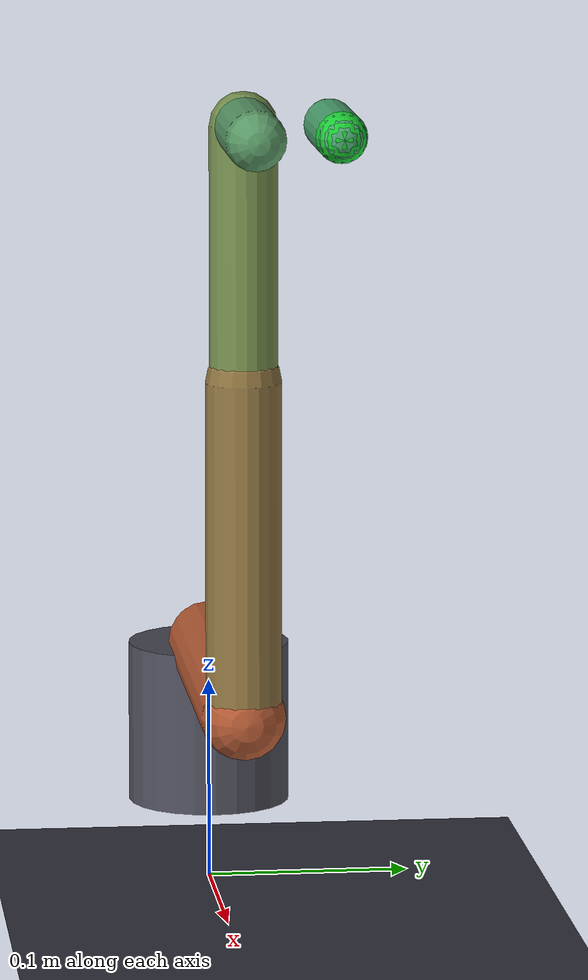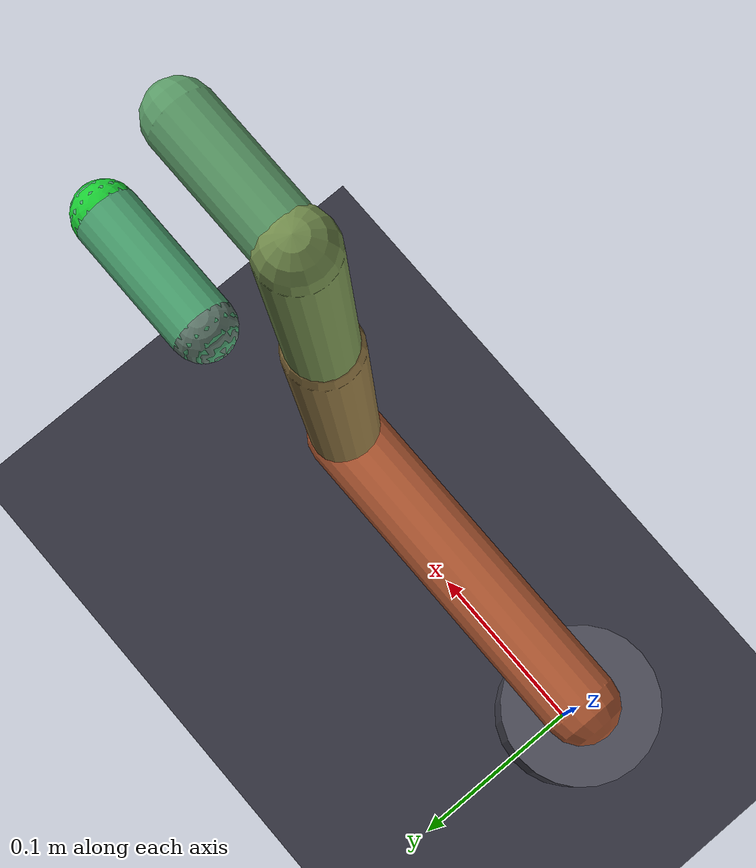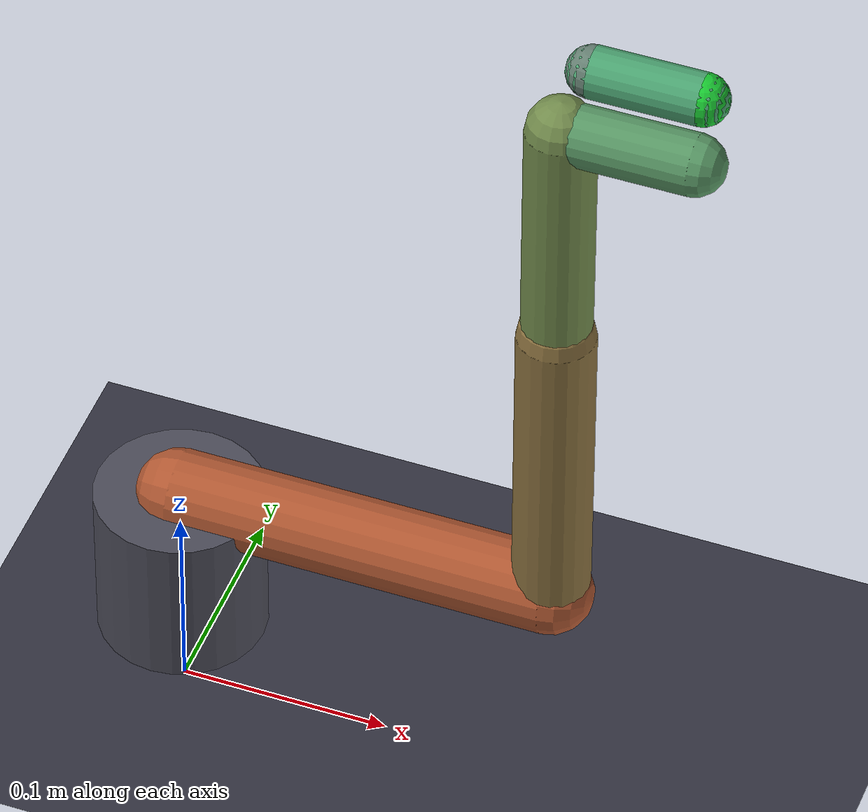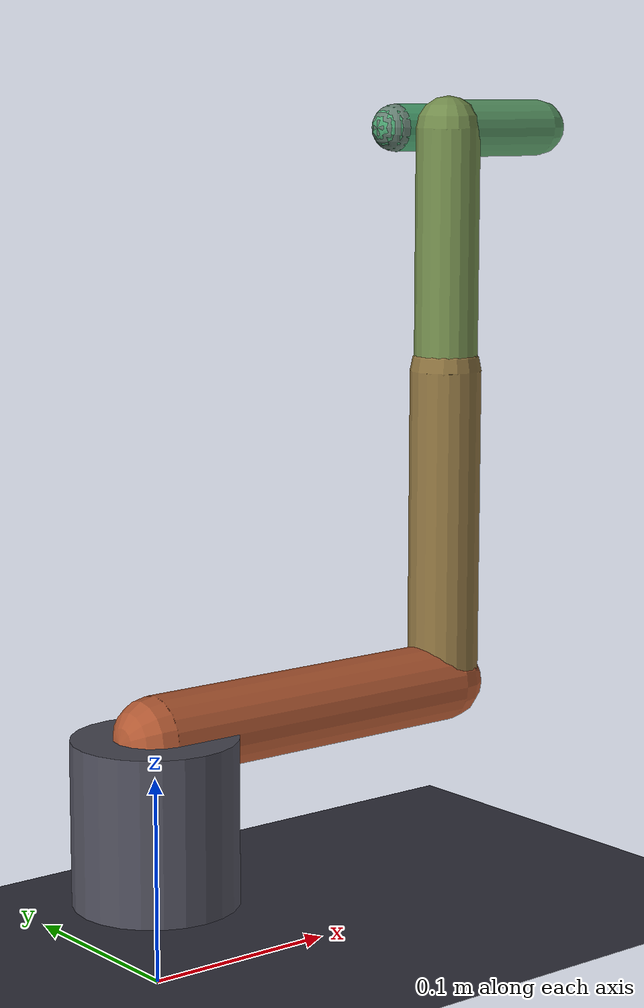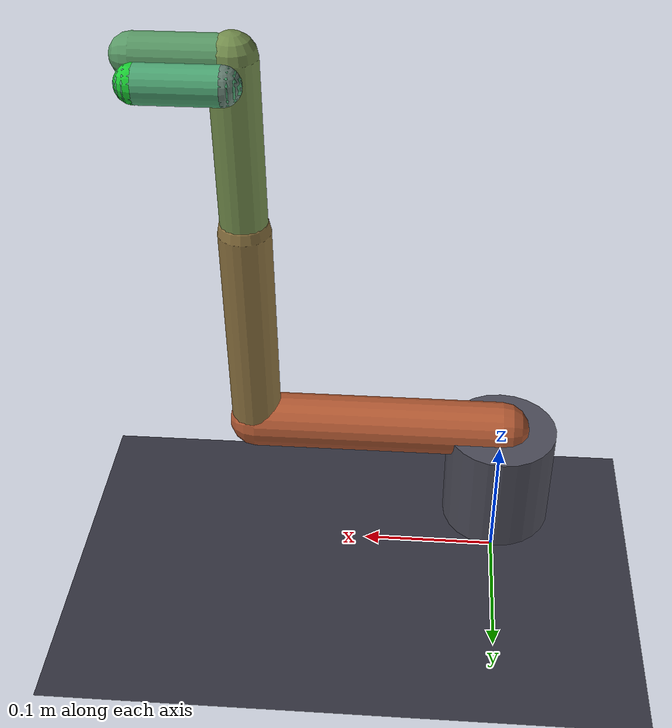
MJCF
<!-- MIT License: Reality OS original verification fixture (wrist_offset_arm).
     Authored for verification ingestion. Not a third-party vendor asset. -->
<mujoco model="wrist_offset_arm">
  <compiler angle="radian" autolimits="true"/>
  <option timestep="0.002" gravity="0 0 -9.81"/>
  <visual>
    <global offwidth="64" offheight="64"/>
  </visual>
  <worldbody>
    <light pos="0 0 2" dir="0 0 -1"/>
    <geom name="floor" type="plane" size="2 2 0.05" rgba="0.2 0.2 0.25 1"/>
    <body name="base" pos="0 0 0.08">
      <geom type="cylinder" size="0.04 0.04" rgba="0.3 0.3 0.35 1" mass="0.45"/>
      <camera name="base_cam" pos="0.7 -0.5 0.5" xyaxes="1 0.3 0 0 0.3 1"/>
      <body name="link1" pos="0 0 0.04">
        <joint name="j1" type="hinge" axis="0 0 1" range="-2.8 2.8" damping="0.45"/>
        <geom type="capsule" fromto="0 0 0 0.18 0 0" size="0.02" rgba="0.7 0.35 0.2 1" mass="0.32"/>
        <body name="link2" pos="0.18 0 0">
          <joint name="j2" type="hinge" axis="0 1 0" range="-2.0 2.0" damping="0.35"/>
          <geom type="capsule" fromto="0 0 0 0 0 0.16" size="0.018" rgba="0.55 0.45 0.25 1" mass="0.28"/>
          <body name="link3" pos="0 0 0.16">
            <joint name="j3" type="hinge" axis="0 1 0" range="-2.2 2.2" damping="0.28"/>
            <geom type="capsule" fromto="0 0 0 0 0 0.12" size="0.016" rgba="0.45 0.55 0.3 1" mass="0.18"/>
            <body name="link4" pos="0 0 0.12">
              <joint name="j4" type="hinge" axis="1 0 0" range="-2.5 2.5" damping="0.22"/>
              <geom type="capsule" fromto="0 0 0 0.06 0 0" size="0.014" rgba="0.35 0.6 0.4 1" mass="0.1"/>
              <body name="wrist_offset" pos="0 0.04 0">
                <geom type="sphere" size="0.012" rgba="0.4 0.5 0.45 1" mass="0.04"/>
                <body name="link5" pos="0 0 0">
                  <joint name="j5" type="hinge" axis="0 0 1" range="-3.0 3.0" damping="0.18"/>
                  <geom type="capsule" fromto="0 0 0 0.05 0 0" size="0.012" rgba="0.3 0.65 0.45 1" mass="0.06"/>
                  <site name="ee" pos="0.05 0 0" size="0.012" rgba="0.1 0.8 0.2 1"/>
                </body>
              </body>
            </body>
          </body>
        </body>
      </body>
    </body>
  </worldbody>
  <contact>
    <exclude body1="base" body2="link1"/>
    <exclude body1="link1" body2="link2"/>
    <exclude body1="link2" body2="link3"/>
    <exclude body1="link3" body2="link4"/>
    <exclude body1="link4" body2="wrist_offset"/>
    <exclude body1="wrist_offset" body2="link5"/>
  </contact>
  <actuator>
    <position name="act1" joint="j1" kp="45" ctrlrange="-2.8 2.8" forcerange="-14 14"/>
    <position name="act2" joint="j2" kp="35" ctrlrange="-2.0 2.0" forcerange="-10 10"/>
    <position name="act3" joint="j3" kp="25" ctrlrange="-2.2 2.2" forcerange="-6 6"/>
    <position name="act4" joint="j4" kp="18" ctrlrange="-2.5 2.5" forcerange="-3 3"/>
    <position name="act5" joint="j5" kp="15" ctrlrange="-3.0 3.0" forcerange="-2 2"/>
  </actuator>
</mujoco>
